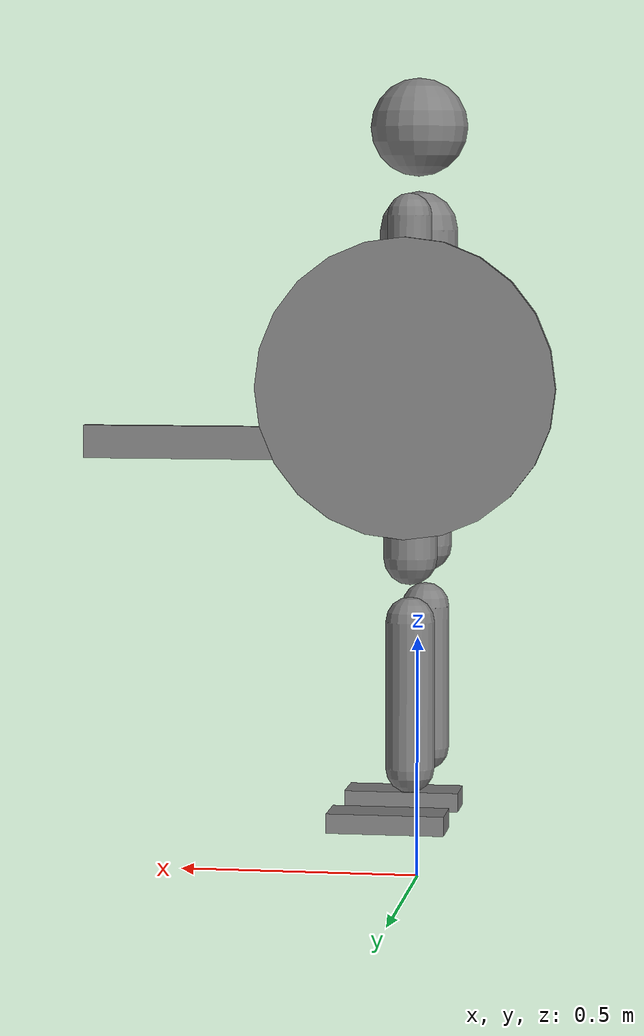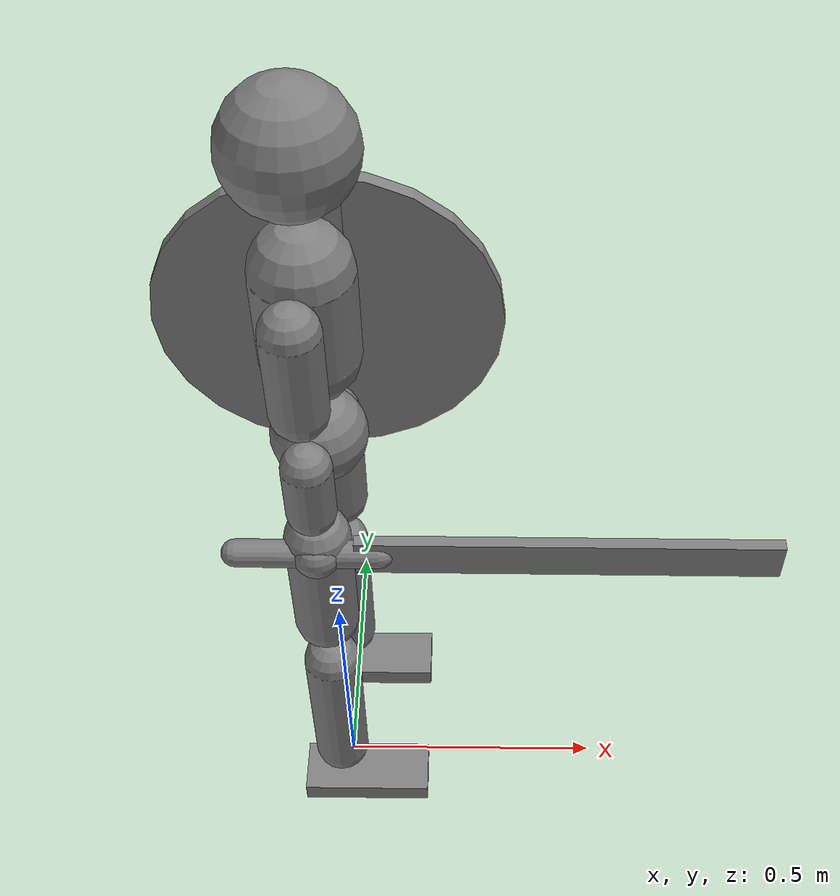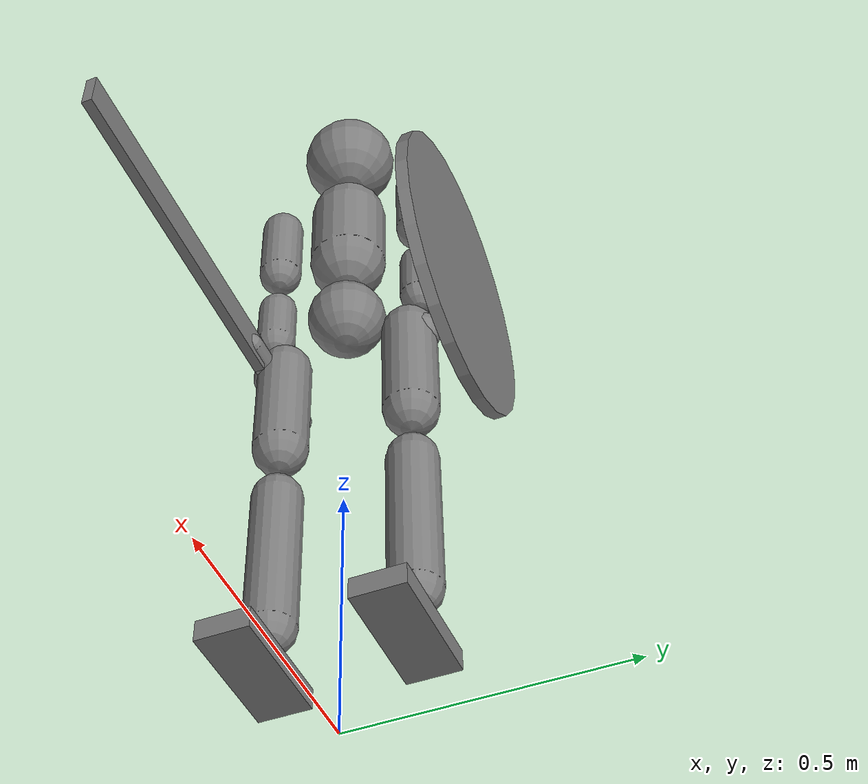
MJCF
<mujoco model="berkeley_humanoid">
  <statistic extent="2" center="0 0 1"/>
  <option timestep="0.00555"/>
  <default>
    <motor ctrlrange="-1 1" ctrllimited="true" forcerange="-100 100" forcelimited="true"/>
    <default class="body">
      <geom type="capsule" condim="1" friction="1.0 0.05 0.05" solimp=".9 .99 .003" solref=".015 1"/>
      <joint type="hinge" damping="0.1" stiffness="5" armature=".007" limited="true" solimplimit="0 .99 .01"/>
      <site size=".04" group="3"/>
      <default class="force-torque">
        <site type="box" size=".01 .01 .02" rgba="1 0 0 1" />
      </default>
      <default class="touch">
        <site type="capsule" rgba="0 0 1 .3"/>
      </default>
    </default>
  </default>

  <worldbody>
    <body name="base" pos="0 0 1" childclass="body">
      <site name="root" class="force-torque"/>
      <geom name="base" type="sphere" pos="0 0 0" size=".08" mass="1"/>
      <site name="base" class="touch" type="sphere" pos="0 0 0.07" size="0.091"/>
      <site name="upper_waist" class="touch" type="sphere" pos="0 0 0.205" size="0.071"/>

      <body name="spine" pos="0 0 0.2">
        <light name="top" pos="0 0 2" mode="trackcom"/>
        <camera name="back" pos="-3 0 1" xyaxes="0 -1 0 1 0 2" mode="trackcom"/>
        <camera name="side" pos="0 -3 1" xyaxes="1 0 0 0 1 2" mode="trackcom"/>
        <joint name="spine_x" pos="0 0 0" axis="1 0 0" range="-20 20" stiffness="50" damping="10" armature=".02"/>
        <joint name="spine_y" pos="0 0 0" axis="0 1 0" range="-20 20" stiffness="50" damping="10" armature=".02"/>
        <joint name="spine_z" pos="0 0 0" axis="0 0 1" range="-20 20" stiffness="50" damping="10" armature=".02"/>
        <geom name="spine" type="capsule" pos="0 0 0.06" size=".08 .08" mass="1.87"/>
        <site name="spine" class="touch" type="sphere" pos="0 0 0.12" size="0.111"/>
        <!--
          this mode limits the neck and spike dof to +-10 deg
          also limits the torque to +-25 Nm
        -->

        <body name="head" pos="0 0 0.35">
          <joint name="head_x" axis="1 0 0" range="-20 20" stiffness="50" damping="10" armature=".02"/>
          <joint name="head_y" axis="0 1 0" range="-20 20" stiffness="50" damping="10" armature=".02"/>
          <joint name="head_z" axis="0 0 1" range="-20 20" stiffness="50" damping="10" armature=".02"/>
          <geom name="head" type="sphere" pos="0 0 0" size="0.1" mass="0.01"/>
          <site name="head" class="touch" pos="0 0 0.175" type="sphere" size="0.103"/>
          <camera name="egocentric" pos=".103 0 0.175" xyaxes="0 -1 0 .1 0 1" fovy="80"/>
        </body>

        <body name="upperarm_r" pos="0.0 -0.160 0.220000">
          <joint name="upperarm_r_x" axis="1 0 0" range="-180 45" stiffness="50" damping="10" armature=".02"/>
          <joint name="upperarm_r_y" axis="0 1 0" range="-180 60" stiffness="50" damping="10" armature=".02"/>
          <joint name="upperarm_r_z" axis="0 0 1"  range="-90 90" stiffness="50" damping="10" armature=".02"/>
          <geom name="upperarm_r" fromto="0 0 -0.05 0 0 -0.2" size=".045" mass="0.65"/>
          <site name="upperarm_r" class="touch" pos="0 0 -0.14" size="0.046 0.1" zaxis="0 0 1"/>

          <body name="lowerarm_r" pos="0 0 -0.272">
            <joint name="lowerarm_r_x" axis="0 1 0" range="-160 0" stiffness="50" damping="10" armature=".02"/>
            <geom name="lowerarm_r" fromto="0 0 -0.05 0 0 -0.15" size="0.04" mass="0.30"/>
            <site name="lowerarm_r" class="touch" pos="0 0 -0.12" size="0.041 0.0685" zaxis="0 1 0"/>

            <body name="hand_r" pos="0 0 -0.258947">
              <joint name="hand_r_x" axis="1 0 0" range="-90 90" stiffness="50" damping="10" armature=".02"/>
              <joint name="hand_r_y" axis="0 1 0" range="-90 90" stiffness="50" damping="10" armature=".02"/>
              <joint name="hand_r_z" axis="0 0 1"  range="-90 90" stiffness="50" damping="10" armature=".02"/>
              <geom name="hand_r" type="sphere" size=".04" mass="0.10"/>
              <site name="hand_r" class="touch" type="sphere" size=".041"/>

              <body name="sword" pos="0.74 0 0">
                <geom name="sword_hilt" fromto="-0.87 0 0 -0.64 0 0" size="0.023" mass="0.50"/>
                <geom name="sword_blade" type="box" pos="-0.34 0 0" size="0.34 0.01 0.035" mass="1.00"/>
              </body>
            </body>
          </body>
        </body>

        <body name="upperarm_l" pos="0.0 0.160 0.220000">
          <joint name="upperarm_l_x" axis="1 0 0" range="-45 180" stiffness="50" damping="10" armature=".02"/>
          <joint name="upperarm_l_y" axis="0 1 0" range="-180 60" stiffness="50" damping="10" armature=".02"/>
          <joint name="upperarm_l_z" axis="0 0 1"  range="-90 90" stiffness="50" damping="10" armature=".02"/>
          <geom name="upperarm_l" fromto="0 0 -0.05 0 0 -0.2" size="0.045" mass="0.65"/>
          <site name="upperarm_l" class="touch" pos="0 0 -0.14" size="0.046 0.1" zaxis="0 0 1"/>

          <body name="lowerarm_l" pos="0 0 -0.272">
            <joint name="left_elbow" axis="0 1 0" range="-160 0" stiffness="50" damping="10" armature=".02"/>
            <geom name="lowerarm_l" fromto="0 0 -0.05 0 0 -0.15" size="0.04" mass="0.30"/>
            <site name="lowerarm_l" class="touch" pos="0 0 -0.1" size="0.041 0.0685" zaxis="0 0 1"/>

            <body name="shield" pos="0 0.07 -0.12">
              <geom name="shield" type="cylinder" fromto="0 0 0 0 0.025 0" size="0.3" density="250"/>
            </body>

            <body name="hand_l" pos="0 0 -0.258947">
              <geom name="hand_l" type="sphere" size=".04" mass="0.10"/>
              <site name="hand_l" class="touch" type="sphere" size=".041"/>
            </body>
          </body>
        </body>
      </body>

      <body name="upperleg_r" pos="0 -0.135 0">
        <site name="upperleg_r" class="force-torque"/>
        <joint name="upperleg_r_x" axis="1 0 0" range="-60 15" stiffness="50" damping="10" armature=".02"/>
        <joint name="upperleg_r_y" axis="0 1 0" range="-140 60" stiffness="50" damping="10" armature=".02"/>
        <joint name="upperleg_r_z" axis="0 0 1" range="-60 35" stiffness="50" damping="10" armature=".02"/>
        <geom name="upperleg_r" fromto="0 0 -0.1 0 0 -0.32" size="0.055" mass="1.11"/>
        <site name="upperleg_r_touch" class="touch" pos="0 0 -0.21" size="0.056 0.301" zaxis="0 0 -1"/>

        <body name="lowerleg_r" pos="0 0 -0.400">
          <site name="lowerleg_r_x" class="force-torque" pos="0 0 0"/>
          <joint name="lowerleg_r_x" pos="0 0 0" axis="0 1 0" range="0 160" stiffness="50" damping="10" armature=".02"/>
          <geom name="lowerleg_r" fromto="0 0 -0.05 0 0 -0.35"  size=".05" mass="0.52"/>
          <site name="lowerleg_r_touch" class="touch" pos="0 0 -0.2" size="0.051 0.156" zaxis="0 0 -1"/>

          <body name="foot_r" pos="0 0 -0.380">
            <site name="foot_r" class="force-torque"/>
            <joint name="foot_r_x" pos="0 0 0" axis="1 0 0" range="-30 30" stiffness="50" damping="10" armature=".02"/>
            <joint name="foot_r_y" pos="0 0 0" axis="0 1 0" range="-55 55" stiffness="50" damping="10" armature=".02"/>
            <joint name="foot_r_z" pos="0 0 0" axis="0 0 1" range="-40 40" stiffness="50" damping="10" armature=".02"/>
            <geom name="foot_r" type="box" pos="0.045 0 -0.08" size="0.12 0.05 0.02" mass="2.6"/>
            <site name="foot_r_touch" class="touch" type="box" pos="0.045 0 -0.08" size="0.125 0.055 0.025"/>
          </body>
        </body>
      </body>

      <body name="upperleg_l" pos="0 0.135 0">
        <site name="upperleg_l" class="force-torque"/>
        <joint name="upperleg_l_x" axis="1 0 0" range="-15 60" stiffness="50" damping="10" armature=".02"/>
        <joint name="upperleg_l_y" axis="0 1 0" range="-140 60" stiffness="50" damping="10" armature=".02"/>
        <joint name="upperleg_l_z" axis="0 0 1" range="-35 60" stiffness="50" damping="10" armature=".02"/>
        <geom name="upperleg_l" fromto="0 0 -0.1 0 0 -0.32" size=".055" mass="1.11"/>
        <site name="upperleg_l_touch" class="touch" pos="0 0 -0.21" size="0.056 0.301" zaxis="0 0 -1"/>

        <body name="lowerleg_l" pos="0 0 -0.400">
          <site name="lowerleg_l_x" class="force-torque" pos="0 0 .02"/>
          <joint name="lowerleg_l_x" pos="0 0 0" axis="0 1 0" range="0 160" stiffness="50" damping="10" armature=".02"/>
          <geom name="lowerleg_l" fromto="0 0 -0.05 0 0 -0.35"  size=".05" mass="0.52"/>
          <site name="lowerleg_l_touch" class="touch" pos="0 0 -0.2" size="0.051 0.156" zaxis="0 0 -1"/>

          <body name="foot_l" pos="0 0 -0.380">
            <site name="foot_l" class="force-torque"/>
            <joint name="foot_l_x" pos="0 0 0" axis="1 0 0" range="-30 30" stiffness="50" damping="10" armature=".02"/>
            <joint name="foot_l_y" pos="0 0 0" axis="0 1 0" range="-55 55" stiffness="50" damping="10" armature=".02"/>
            <joint name="foot_l_z" pos="0 0 0" axis="0 0 1" range="-40 40" stiffness="50" damping="10" armature=".02"/>
            <geom name="foot_l" type="box" pos="0.045 0 -0.08" size="0.12 0.05 0.02" mass="2.6"/>
            <site name="foot_l_touch" class="touch" type="box" pos="0.045 0 -0.08" size="0.125 0.055 0.025"/>
          </body>
        </body>
      </body>
    </body>
  </worldbody>

  <actuator>
    <motor name="spine_x"       gear="1" 	joint="spine_x"/>
    <motor name="spine_y"       gear="1" 	joint="spine_y"/>
    <motor name="spine_z"       gear="1" 	joint="spine_z"/>
    <motor name="head_x"        gear="1" 	joint="head_x"/>
    <motor name="head_y"        gear="1" 	joint="head_y"/>
    <motor name="head_z"        gear="1" 	joint="head_z"/>
    <motor name="upperarm_r_x" 	gear="1" 	joint="upperarm_r_x"/>
    <motor name="upperarm_r_y" 	gear="1" 	joint="upperarm_r_y"/>
    <motor name="upperarm_r_z" 	gear="1" 	joint="upperarm_r_z"/>
    <motor name="lowerarm_r_x"  gear="1" 	joint="lowerarm_r_x"/>
    <motor name="hand_r_x" 	  	gear="1" 	joint="hand_r_x"/>
    <motor name="hand_r_y"    	gear="1" 	joint="hand_r_y"/>
    <motor name="hand_r_z"    	gear="1" 	joint="hand_r_z"/>
    <motor name="upperarm_l_x" 	gear="1" 	joint="upperarm_l_x"/>
    <motor name="upperarm_l_y" 	gear="1" 	joint="upperarm_l_y"/>
    <motor name="upperarm_l_z" 	gear="1" 	joint="upperarm_l_z"/>
    <motor name="left_elbow"    gear="1" 	joint="left_elbow"/>
    <motor name="upperleg_r_x"  gear="1" 	joint="upperleg_r_x"/>
    <motor name="upperleg_r_z"  gear="1" 	joint="upperleg_r_z"/>
    <motor name="upperleg_r_y"  gear="1" 	joint="upperleg_r_y"/>
    <motor name="lowerleg_r_x"  gear="1" 	joint="lowerleg_r_x"/>
    <motor name="foot_r_x"   	  gear="1" 	joint="foot_r_x"/>
    <motor name="foot_r_y"   	  gear="1" 	joint="foot_r_y"/>
    <motor name="foot_r_z"   	  gear="1" 	joint="foot_r_z"/>
    <motor name="upperleg_l_x"  gear="1" 	joint="upperleg_l_x"/>
    <motor name="upperleg_l_z"  gear="1" 	joint="upperleg_l_z"/>
    <motor name="upperleg_l_y"  gear="1" 	joint="upperleg_l_y"/>
    <motor name="lowerleg_l_x"  gear="1" 	joint="lowerleg_l_x"/>
    <motor name="foot_l_x"    	gear="1" 	joint="foot_l_x"/>
    <motor name="foot_l_y"    	gear="1" 	joint="foot_l_y"/>
    <motor name="foot_l_z"    	gear="1" 	joint="foot_l_z"/>
  </actuator>

  <sensor>
    <subtreelinvel name="base_subtreelinvel" body="base"/>
    <accelerometer name="root_accel"    site="root"/>
    <velocimeter name="root_vel"        site="root"/>
    <gyro name="root_gyro"              site="root"/>

    <force name="foot_l_force"          site="foot_l"/>
    <force name="foot_r_force"          site="foot_r"/>
    <force name="lowerleg_l_x_force"    site="lowerleg_l_x"/>
    <force name="lowerleg_r_x_force"    site="lowerleg_r_x"/>
    <force name="upperleg_l_force"      site="upperleg_l"/>
    <force name="upperleg_r_force"      site="upperleg_r"/>

    <torque name="foot_l_torque"        site="foot_l"/>
    <torque name="foot_r_torque"        site="foot_r"/>
    <torque name="lowerleg_l_x_torque"  site="lowerleg_l_x"/>
    <torque name="lowerleg_r_x_torque"  site="lowerleg_r_x"/>
    <torque name="upperleg_l_torque"    site="upperleg_l"/>
    <torque name="upperleg_r_torque"    site="upperleg_r"/>

    <touch name="base_touch"            site="base"/>

    <touch name="spine_touch"           site="spine"/>
    <touch name="head_touch"            site="head"/>
    <touch name="upperarm_r_touch"      site="upperarm_r"/>
    <touch name="lowerarm_r_touch"      site="lowerarm_r"/>
    <touch name="hand_r_touch"          site="hand_r"/>
    <touch name="upperarm_l_touch"      site="upperarm_l"/>
    <touch name="lowerarm_l_touch"      site="lowerarm_l"/>
    <touch name="hand_l_touch"          site="hand_l"/>
    <touch name="upperleg_r_touch"      site="upperleg_r_touch"/>
    <touch name="lowerleg_r_touch"      site="lowerleg_r_touch"/>
    <touch name="foot_r_touch"          site="foot_r_touch"/>
    <touch name="upperleg_l_touch"      site="upperleg_l_touch"/>
    <touch name="lowerleg_l_touch"      site="lowerleg_l_touch"/>
    <touch name="foot_l_touch"          site="foot_l_touch"/>
  </sensor>

</mujoco>
